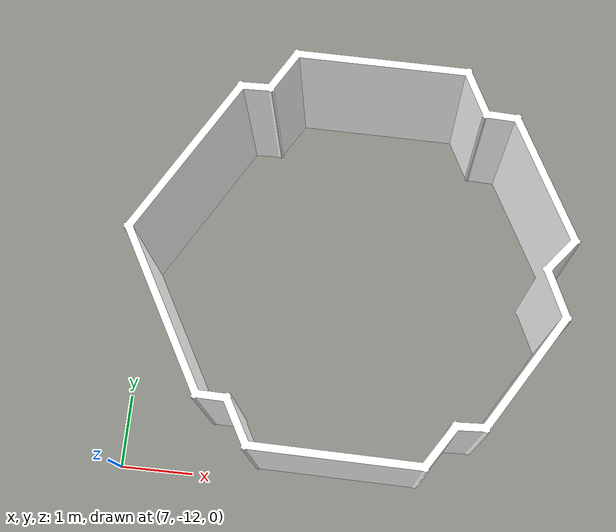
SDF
<sdf version="1.7">
  <world name="sim_world">
    <physics name="10ms" type="ode">
      <max_step_size>0.01</max_step_size>
      <real_time_factor>1.0</real_time_factor>
    </physics>
    <plugin filename="libignition-gazebo-physics-system.so" name="ignition::gazebo::systems::Physics">
    </plugin>
    <plugin filename="libignition-gazebo-user-commands-system.so" name="ignition::gazebo::systems::UserCommands">
    </plugin>
    <plugin filename="libignition-gazebo-scene-broadcaster-system.so" name="ignition::gazebo::systems::SceneBroadcaster">
    </plugin>
    <scene>
      <ambient>1 1 1</ambient>
      <background>0.8 0.8 0.8</background>
      <grid>false</grid>
    </scene>
    <gui fullscreen="0">
      <window>
        <width>1000</width>
        <height>845</height>
        <style material_theme="Light" material_primary="DeepOrange" material_accent="LightBlue" toolbar_color_light="#f3f3f3" toolbar_text_color_light="#111111" toolbar_color_dark="#414141" toolbar_text_color_dark="#f3f3f3" plugin_toolbar_color_light="#bbdefb" plugin_toolbar_text_color_light="#111111" plugin_toolbar_color_dark="#607d8b" plugin_toolbar_text_color_dark="#eeeeee" />
        <menus>
          <drawer default="false">
          </drawer>
        </menus>
      </window>
      <plugin filename="GzScene3D" name="3D View">
        <ignition-gui>
          <title>3D View</title>
          <property type="bool" key="showTitleBar">false</property>
          <property type="string" key="state">docked</property>
        </ignition-gui>
        <engine>ogre2</engine>
        <scene>scene</scene>
        <ambient_light>0.4 0.4 0.4</ambient_light>
        <background_color>0.8 0.8 0.8</background_color>
        <camera_pose>0 -20 10 0 0.6 1.57</camera_pose>
      </plugin>
      <plugin filename="WorldControl" name="World control">
        <ignition-gui>
          <title>World control</title>
          <property type="bool" key="showTitleBar">false</property>
          <property type="bool" key="resizable">false</property>
          <property type="double" key="height">72</property>
          <property type="double" key="width">121</property>
          <property type="double" key="z">1</property>
          <property type="string" key="state">floating</property>
          <anchors target="3D View">
            <line own="left" target="left" />
            <line own="bottom" target="bottom" />
          </anchors>
        </ignition-gui>
        <play_pause>true</play_pause>
        <step>true</step>
        <start_paused>true</start_paused>
      </plugin>
      <plugin filename="WorldStats" name="World stats">
        <ignition-gui>
          <title>World stats</title>
          <property type="bool" key="showTitleBar">false</property>
          <property type="bool" key="resizable">false</property>
          <property type="double" key="height">110</property>
          <property type="double" key="width">290</property>
          <property type="double" key="z">1</property>
          <property type="string" key="state">floating</property>
          <anchors target="3D View">
            <line own="right" target="right" />
            <line own="bottom" target="bottom" />
          </anchors>
        </ignition-gui>
        <sim_time>true</sim_time>
        <real_time>true</real_time>
        <real_time_factor>true</real_time_factor>
        <iterations>true</iterations>
      </plugin>
      <plugin filename="TransformControl" name="Transform control">
        <ignition-gui>
          <title>Transform control</title>
          <anchors target="3D View">
            <line own="left" target="left" />
            <line own="top" target="top" />
          </anchors>
          <property key="resizable" type="bool">false</property>
          <property key="width" type="double">230</property>
          <property key="height" type="double">50</property>
          <property key="state" type="string">floating</property>
          <property key="showTitleBar" type="bool">false</property>
          <property key="cardBackground" type="string">#666666</property>
        </ignition-gui>
      </plugin>
      <plugin filename="Shapes" name="Shapes">
        <ignition-gui>
          <anchors target="Transform control">
            <line own="left" target="right" />
            <line own="top" target="top" />
          </anchors>
          <property key="resizable" type="bool">false</property>
          <property key="width" type="double">200</property>
          <property key="height" type="double">50</property>
          <property key="state" type="string">floating</property>
          <property key="showTitleBar" type="bool">false</property>
          <property key="cardBackground" type="string">#666666</property>
        </ignition-gui>
      </plugin>
      <plugin filename="ComponentInspector" name="Component inspector">
        <ignition-gui>
          <property type="bool" key="showTitleBar">false</property>
          <property type="string" key="state">docked</property>
        </ignition-gui>
      </plugin>
      <plugin filename="EntityTree" name="Entity tree">
        <ignition-gui>
          <property type="bool" key="showTitleBar">false</property>
          <property type="string" key="state">docked</property>
        </ignition-gui>
      </plugin>
      <plugin filename="toggle_charging" name="toggle_charging" />
      <plugin name="toggle_floors" filename="toggle_floors">
        <floor name="L1" model_name="turtlebot3_world_L1" />
      </plugin>
    </gui>
    <light type="directional" name="sun">
      <cast_shadows>true</cast_shadows>
      <pose>0 0 10 0 0 0</pose>
      <diffuse>1 1 1 1</diffuse>
      <specular>0.2 0.2 0.2 1</specular>
      <attenuation>
        <range>1000</range>
        <constant>0.09</constant>
        <linear>0.001</linear>
        <quadratic>0.001</quadratic>
      </attenuation>
      <direction>-0.5 0.1 -0.9</direction>
    </light>
    <include>
      <name>turtlebot3_world_L1</name>
      <uri>model://turtlebot3_world_L1</uri>
      <pose>0 0 0.0 0 0 0</pose>
    </include>
    <rmf_charger_waypoints name="charger_waypoints">
      <rmf_vertex name="turtlebot3_1_charger" x="8.199075959155444" y="-9.813218877922866" level="L1" />
      <rmf_vertex name="robot1_charger" x="10.053690169631432" y="-8.673117931581563" level="L1" />
      <rmf_vertex name="robot2_charger" x="10.022537411316929" y="-9.7629644283144" level="L1" />
    </rmf_charger_waypoints>
  </world>
</sdf>

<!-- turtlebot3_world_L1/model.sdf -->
<sdf version="1.7">
  <model name="turtlebot3_world_L1">
    <static>true</static>
    <link name="wall_1">
      <visual name="wall_1">
        <geometry>
          <mesh>
            <uri>model://turtlebot3_world_L1/meshes/wall_1.obj</uri>
          </mesh>
        </geometry>
        <transparency>0.0</transparency>
        <material>
          <diffuse>1.0 1.0 1.0</diffuse>
          <specular>0.1 0.1 0.1</specular>
          <pbr>
            <metal>
              <metalness>0.0</metalness>
              <albedo_map>model://turtlebot3_world_L1/meshes/default.png</albedo_map>
            </metal>
          </pbr>
          <script>
            <uri>model://turtlebot3_world_L1/meshes/</uri>
            <name>wall_1_Diffuse</name>
          </script>
        </material>
      </visual>
      <collision name="collision">
        <geometry>
          <mesh>
            <uri>model://turtlebot3_world_L1/meshes/wall_1.obj</uri>
          </mesh>
        </geometry>
        <surface>
          <contact>
            <collide_bitmask>0x01</collide_bitmask>
          </contact>
        </surface>
      </collision>
      <pose>7.044979564622004 -11.87691936607778 0 0 0 0</pose>
    </link>
  </model>
</sdf>
